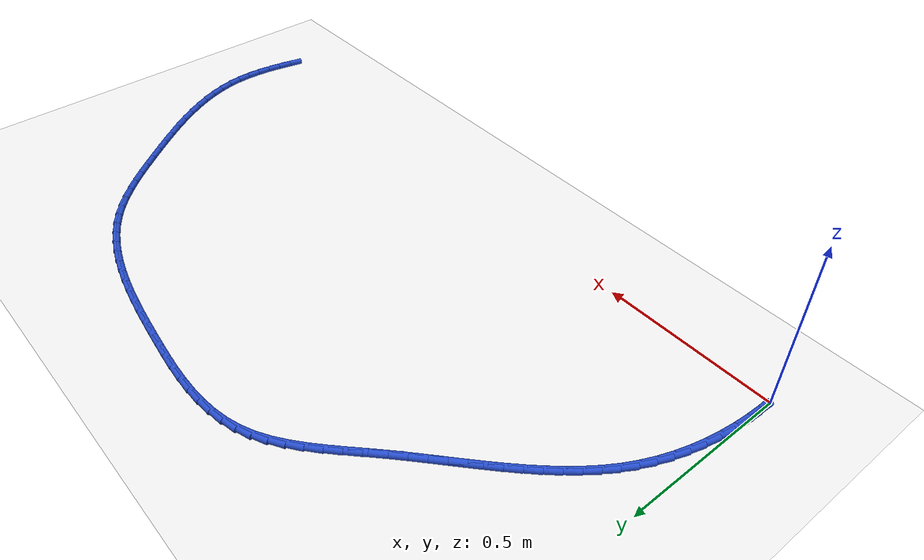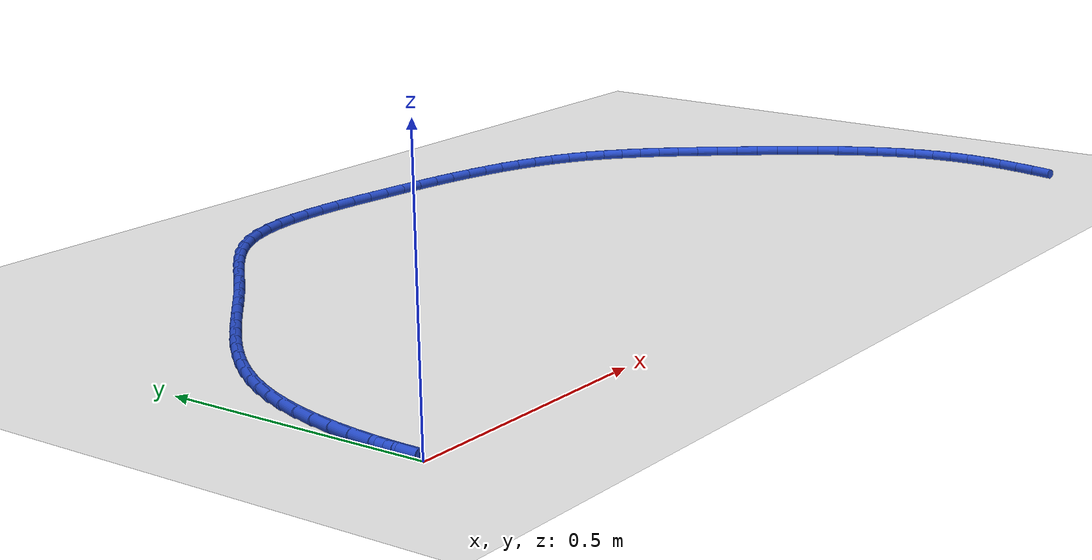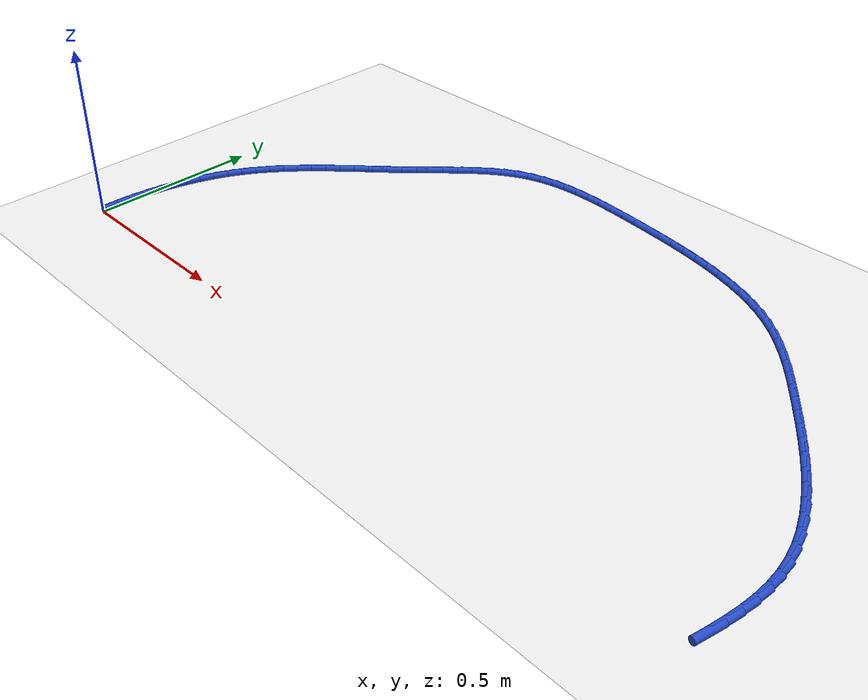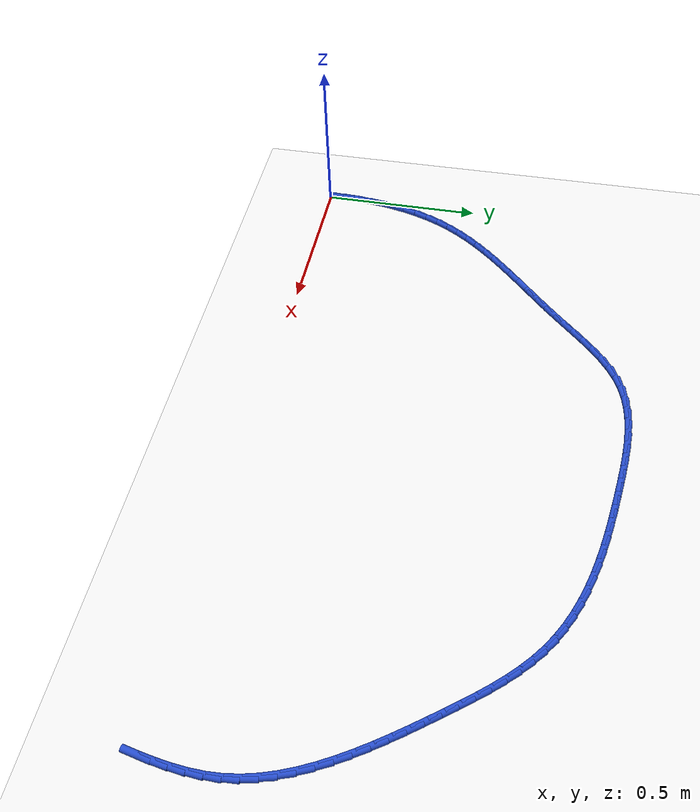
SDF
<sdf version="1.6">
 <world name="default">
  <model name="ground_plane">
   <static>1</static>
   <link name="link">
    <collision name="collision">
     <geometry><plane><normal>0 0 1</normal><size>100 100</size></plane></geometry>
     <surface><friction><ode><mu>100</mu><mu2>50</mu2></ode></friction></surface>
    </collision>
    <visual name="visual">
     <cast_shadows>0</cast_shadows>
     <geometry><plane><normal>0 0 1</normal><size>100 100</size></plane></geometry>
     <material>
      <script><uri>file://media/materials/scripts/gazebo.material</uri><name>Gazebo/WhiteGlow</name></script>
     </material>
    </visual>
   </link>
  </model>
  <model name="line">
   <link name="link_1">
    <pose>0.0004980837336147178 0.04536144256237778 0.01 0 1.57 1.5186307544797466</pose>
    <collision name="collision">
     <geometry><cylinder><radius>0.01</radius><length>0.08</length></cylinder></geometry>
    </collision>
    <visual name="visual">
     <material>
      <script><name>Gazebo/Blue</name><uri>file://media/materials/scripts/gazebo.material</uri></script>
     </material>
     <geometry><cylinder><radius>0.01</radius><length>0.08</length></cylinder></geometry>
    </visual>
   </link>
   <link name="link_2">
    <pose>0.0028660589533701453 0.09071370798471727 0.01 0 1.57 1.4754094035959286</pose>
    <collision name="collision">
     <geometry><cylinder><radius>0.01</radius><length>0.08</length></cylinder></geometry>
    </collision>
    <visual name="visual">
     <material>
      <script><name>Gazebo/Blue</name><uri>file://media/materials/scripts/gazebo.material</uri></script>
     </material>
     <geometry><cylinder><radius>0.01</radius><length>0.08</length></cylinder></geometry>
    </visual>
   </link>
   <link name="link_3">
    <pose>0.007185367812581252 0.13585827057391336 0.01 0 1.57 1.4297559981222152</pose>
    <collision name="collision">
     <geometry><cylinder><radius>0.01</radius><length>0.08</length></cylinder></geometry>
    </collision>
    <visual name="visual">
     <material>
      <script><name>Gazebo/Blue</name><uri>file://media/materials/scripts/gazebo.material</uri></script>
     </material>
     <geometry><cylinder><radius>0.01</radius><length>0.08</length></cylinder></geometry>
    </visual>
   </link>
   <link name="link_4">
    <pose>0.013537452464563046 0.18059660463686114 0.01 0 1.57 1.381265283397986</pose>
    <collision name="collision">
     <geometry><cylinder><radius>0.01</radius><length>0.08</length></cylinder></geometry>
    </collision>
    <visual name="visual">
     <material>
      <script><name>Gazebo/Blue</name><uri>file://media/materials/scripts/gazebo.material</uri></script>
     </material>
     <geometry><cylinder><radius>0.01</radius><length>0.08</length></cylinder></geometry>
    </visual>
   </link>
   <link name="link_5">
    <pose>0.02200375506263049 0.22473018448045545 0.01 0 1.57 1.32952694881339</pose>
    <collision name="collision">
     <geometry><cylinder><radius>0.01</radius><length>0.08</length></cylinder></geometry>
    </collision>
    <visual name="visual">
     <material>
      <script><name>Gazebo/Blue</name><uri>file://media/materials/scripts/gazebo.material</uri></script>
     </material>
     <geometry><cylinder><radius>0.01</radius><length>0.08</length></cylinder></geometry>
    </visual>
   </link>
   <link name="link_6">
    <pose>0.03266571776009861 0.2680604844115916 0.01 0 1.57 1.2741347418427678</pose>
    <collision name="collision">
     <geometry><cylinder><radius>0.01</radius><length>0.08</length></cylinder></geometry>
    </collision>
    <visual name="visual">
     <material>
      <script><name>Gazebo/Blue</name><uri>file://media/materials/scripts/gazebo.material</uri></script>
     </material>
     <geometry><cylinder><radius>0.01</radius><length>0.08</length></cylinder></geometry>
    </visual>
   </link>
   <link name="link_7">
    <pose>0.045604782710282385 0.31038897873716437 0.01 0 1.57 1.2147025391484945</pose>
    <collision name="collision">
     <geometry><cylinder><radius>0.01</radius><length>0.08</length></cylinder></geometry>
    </collision>
    <visual name="visual">
     <material>
      <script><name>Gazebo/Blue</name><uri>file://media/materials/scripts/gazebo.material</uri></script>
     </material>
     <geometry><cylinder><radius>0.01</radius><length>0.08</length></cylinder></geometry>
    </visual>
   </link>
   <link name="link_8">
    <pose>0.060902392066496794 0.35151714176406873 0.01 0 1.57 1.1508891159409884</pose>
    <collision name="collision">
     <geometry><cylinder><radius>0.01</radius><length>0.08</length></cylinder></geometry>
    </collision>
    <visual name="visual">
     <material>
      <script><name>Gazebo/Blue</name><uri>file://media/materials/scripts/gazebo.material</uri></script>
     </material>
     <geometry><cylinder><radius>0.01</radius><length>0.08</length></cylinder></geometry>
    </visual>
   </link>
   <link name="link_9">
    <pose>0.07863998798205683 0.3912464477991998 0.01 0 1.57 1.08282353586346</pose>
    <collision name="collision">
     <geometry><cylinder><radius>0.01</radius><length>0.08</length></cylinder></geometry>
    </collision>
    <visual name="visual">
     <material>
      <script><name>Gazebo/Blue</name><uri>file://media/materials/scripts/gazebo.material</uri></script>
     </material>
     <geometry><cylinder><radius>0.01</radius><length>0.08</length></cylinder></geometry>
    </visual>
   </link>
   <link name="link_10">
    <pose>0.09888734159345738 0.4293923587249024 0.01 0 1.57 1.0164514166122463</pose>
    <collision name="collision">
     <geometry><cylinder><radius>0.01</radius><length>0.08</length></cylinder></geometry>
    </collision>
    <visual name="visual">
     <material>
      <script><name>Gazebo/Blue</name><uri>file://media/materials/scripts/gazebo.material</uri></script>
     </material>
     <geometry><cylinder><radius>0.01</radius><length>0.08</length></cylinder></geometry>
    </visual>
   </link>
   <link name="link_11">
    <pose>0.12153896443427915 0.4659803829821774 0.01 0 1.57 0.9569753983589105</pose>
    <collision name="collision">
     <geometry><cylinder><radius>0.01</radius><length>0.08</length></cylinder></geometry>
    </collision>
    <visual name="visual">
     <material>
      <script><name>Gazebo/Blue</name><uri>file://media/materials/scripts/gazebo.material</uri></script>
     </material>
     <geometry><cylinder><radius>0.01</radius><length>0.08</length></cylinder></geometry>
    </visual>
   </link>
   <link name="link_12">
    <pose>0.1463541316501552 0.5011981082215012 0.01 0 1.57 0.9050196701007648</pose>
    <collision name="collision">
     <geometry><cylinder><radius>0.01</radius><length>0.08</length></cylinder></geometry>
    </collision>
    <visual name="visual">
     <material>
      <script><name>Gazebo/Blue</name><uri>file://media/materials/scripts/gazebo.material</uri></script>
     </material>
     <geometry><cylinder><radius>0.01</radius><length>0.08</length></cylinder></geometry>
    </visual>
   </link>
   <link name="link_13">
    <pose>0.17308862103365819 0.535237313629578 0.01 0 1.57 0.8607954842290533</pose>
    <collision name="collision">
     <geometry><cylinder><radius>0.01</radius><length>0.08</length></cylinder></geometry>
    </collision>
    <visual name="visual">
     <material>
      <script><name>Gazebo/Blue</name><uri>file://media/materials/scripts/gazebo.material</uri></script>
     </material>
     <geometry><cylinder><radius>0.01</radius><length>0.08</length></cylinder></geometry>
    </visual>
   </link>
   <link name="link_14">
    <pose>0.2014982103773606 0.5682897783931119 0.01 0 1.57 0.8243014754025475</pose>
    <collision name="collision">
     <geometry><cylinder><radius>0.01</radius><length>0.08</length></cylinder></geometry>
    </collision>
    <visual name="visual">
     <material>
      <script><name>Gazebo/Blue</name><uri>file://media/materials/scripts/gazebo.material</uri></script>
     </material>
     <geometry><cylinder><radius>0.01</radius><length>0.08</length></cylinder></geometry>
    </visual>
   </link>
   <link name="link_15">
    <pose>0.23133867747383494 0.6005472816988067 0.01 0 1.57 0.795403954983912</pose>
    <collision name="collision">
     <geometry><cylinder><radius>0.01</radius><length>0.08</length></cylinder></geometry>
    </collision>
    <visual name="visual">
     <material>
      <script><name>Gazebo/Blue</name><uri>file://media/materials/scripts/gazebo.material</uri></script>
     </material>
     <geometry><cylinder><radius>0.01</radius><length>0.08</length></cylinder></geometry>
    </visual>
   </link>
   <link name="link_16">
    <pose>0.2623658001156538 0.6322016027333663 0.01 0 1.57 0.773903501327503</pose>
    <collision name="collision">
     <geometry><cylinder><radius>0.01</radius><length>0.08</length></cylinder></geometry>
    </collision>
    <visual name="visual">
     <material>
      <script><name>Gazebo/Blue</name><uri>file://media/materials/scripts/gazebo.material</uri></script>
     </material>
     <geometry><cylinder><radius>0.01</radius><length>0.08</length></cylinder></geometry>
    </visual>
   </link>
   <link name="link_17">
    <pose>0.29433535609538963 0.6634445206834949 0.01 0 1.57 0.7595843718589559</pose>
    <collision name="collision">
     <geometry><cylinder><radius>0.01</radius><length>0.08</length></cylinder></geometry>
    </collision>
    <visual name="visual">
     <material>
      <script><name>Gazebo/Blue</name><uri>file://media/materials/scripts/gazebo.material</uri></script>
     </material>
     <geometry><cylinder><radius>0.01</radius><length>0.08</length></cylinder></geometry>
    </visual>
   </link>
   <link name="link_18">
    <pose>0.32700312320561503 0.6944678147358964 0.01 0 1.57 0.7522475026773017</pose>
    <collision name="collision">
     <geometry><cylinder><radius>0.01</radius><length>0.08</length></cylinder></geometry>
    </collision>
    <visual name="visual">
     <material>
      <script><name>Gazebo/Blue</name><uri>file://media/materials/scripts/gazebo.material</uri></script>
     </material>
     <geometry><cylinder><radius>0.01</radius><length>0.08</length></cylinder></geometry>
    </visual>
   </link>
   <link name="link_19">
    <pose>0.36012487923890246 0.7254632640772747 0.01 0 1.57 0.7517295700213301</pose>
    <collision name="collision">
     <geometry><cylinder><radius>0.01</radius><length>0.08</length></cylinder></geometry>
    </collision>
    <visual name="visual">
     <material>
      <script><name>Gazebo/Blue</name><uri>file://media/materials/scripts/gazebo.material</uri></script>
     </material>
     <geometry><cylinder><radius>0.01</radius><length>0.08</length></cylinder></geometry>
    </visual>
   </link>
   <link name="link_20">
    <pose>0.39345640198782456 0.7566226478943339 0.01 0 1.57 0.7579107161345098</pose>
    <collision name="collision">
     <geometry><cylinder><radius>0.01</radius><length>0.08</length></cylinder></geometry>
    </collision>
    <visual name="visual">
     <material>
      <script><name>Gazebo/Blue</name><uri>file://media/materials/scripts/gazebo.material</uri></script>
     </material>
     <geometry><cylinder><radius>0.01</radius><length>0.08</length></cylinder></geometry>
    </visual>
   </link>
   <link name="link_21">
    <pose>0.4267534692449537 0.7881377453737778 0.01 0 1.57 0.7707129124697559</pose>
    <collision name="collision">
     <geometry><cylinder><radius>0.01</radius><length>0.08</length></cylinder></geometry>
    </collision>
    <visual name="visual">
     <material>
      <script><name>Gazebo/Blue</name><uri>file://media/materials/scripts/gazebo.material</uri></script>
     </material>
     <geometry><cylinder><radius>0.01</radius><length>0.08</length></cylinder></geometry>
    </visual>
   </link>
   <link name="link_22">
    <pose>0.45977185880286264 0.8202003357023107 0.01 0 1.57 0.7874714968516009</pose>
    <collision name="collision">
     <geometry><cylinder><radius>0.01</radius><length>0.08</length></cylinder></geometry>
    </collision>
    <visual name="visual">
     <material>
      <script><name>Gazebo/Blue</name><uri>file://media/materials/scripts/gazebo.material</uri></script>
     </material>
     <geometry><cylinder><radius>0.01</radius><length>0.08</length></cylinder></geometry>
    </visual>
   </link>
   <link name="link_23">
    <pose>0.4923334600405235 0.8528972397760777 0.01 0 1.57 0.7929929778401426</pose>
    <collision name="collision">
     <geometry><cylinder><radius>0.01</radius><length>0.08</length></cylinder></geometry>
    </collision>
    <visual name="visual">
     <material>
      <script><name>Gazebo/Blue</name><uri>file://media/materials/scripts/gazebo.material</uri></script>
     </material>
     <geometry><cylinder><radius>0.01</radius><length>0.08</length></cylinder></geometry>
    </visual>
   </link>
   <link name="link_24">
    <pose>0.5246453715996344 0.8857037229693384 0.01 0 1.57 0.7817123978896611</pose>
    <collision name="collision">
     <geometry><cylinder><radius>0.01</radius><length>0.08</length></cylinder></geometry>
    </collision>
    <visual name="visual">
     <material>
      <script><name>Gazebo/Blue</name><uri>file://media/materials/scripts/gazebo.material</uri></script>
     </material>
     <geometry><cylinder><radius>0.01</radius><length>0.08</length></cylinder></geometry>
    </visual>
   </link>
   <link name="link_25">
    <pose>0.5570538294970856 0.9178741571360471 0.01 0 1.57 0.7529931709062846</pose>
    <collision name="collision">
     <geometry><cylinder><radius>0.01</radius><length>0.08</length></cylinder></geometry>
    </collision>
    <visual name="visual">
     <material>
      <script><name>Gazebo/Blue</name><uri>file://media/materials/scripts/gazebo.material</uri></script>
     </material>
     <geometry><cylinder><radius>0.01</radius><length>0.08</length></cylinder></geometry>
    </visual>
   </link>
   <link name="link_26">
    <pose>0.589905258699434 0.9486626141549902 0.01 0 1.57 0.7056293653462783</pose>
    <collision name="collision">
     <geometry><cylinder><radius>0.01</radius><length>0.08</length></cylinder></geometry>
    </collision>
    <visual name="visual">
     <material>
      <script><name>Gazebo/Blue</name><uri>file://media/materials/scripts/gazebo.material</uri></script>
     </material>
     <geometry><cylinder><radius>0.01</radius><length>0.08</length></cylinder></geometry>
    </visual>
   </link>
   <link name="link_27">
    <pose>0.6235460841732369 0.9773231659049542 0.01 0 1.57 0.6380358123388974</pose>
    <collision name="collision">
     <geometry><cylinder><radius>0.01</radius><length>0.08</length></cylinder></geometry>
    </collision>
    <visual name="visual">
     <material>
      <script><name>Gazebo/Blue</name><uri>file://media/materials/scripts/gazebo.material</uri></script>
     </material>
     <geometry><cylinder><radius>0.01</radius><length>0.08</length></cylinder></geometry>
    </visual>
   </link>
   <link name="link_28">
    <pose>0.6583227308850517 1.003109884264726 0.01 0 1.57 0.5487249761104109</pose>
    <collision name="collision">
     <geometry><cylinder><radius>0.01</radius><length>0.08</length></cylinder></geometry>
    </collision>
    <visual name="visual">
     <material>
      <script><name>Gazebo/Blue</name><uri>file://media/materials/scripts/gazebo.material</uri></script>
     </material>
     <geometry><cylinder><radius>0.01</radius><length>0.08</length></cylinder></geometry>
    </visual>
   </link>
   <link name="link_29">
    <pose>0.6945816238014362 1.0252768411130926 0.01 0 1.57 0.4376581873895233</pose>
    <collision name="collision">
     <geometry><cylinder><radius>0.01</radius><length>0.08</length></cylinder></geometry>
    </collision>
    <visual name="visual">
     <material>
      <script><name>Gazebo/Blue</name><uri>file://media/materials/scripts/gazebo.material</uri></script>
     </material>
     <geometry><cylinder><radius>0.01</radius><length>0.08</length></cylinder></geometry>
    </visual>
   </link>
   <link name="link_30">
    <pose>0.7326611927867951 1.043095140949543 0.01 0 1.57 0.32077157145601176</pose>
    <collision name="collision">
     <geometry><cylinder><radius>0.01</radius><length>0.08</length></cylinder></geometry>
    </collision>
    <visual name="visual">
     <material>
      <script><name>Gazebo/Blue</name><uri>file://media/materials/scripts/gazebo.material</uri></script>
     </material>
     <geometry><cylinder><radius>0.01</radius><length>0.08</length></cylinder></geometry>
    </visual>
   </link>
   <link name="link_31">
    <pose>0.7726446977582366 1.05637949770398 0.01 0 1.57 0.21752228846156565</pose>
    <collision name="collision">
     <geometry><cylinder><radius>0.01</radius><length>0.08</length></cylinder></geometry>
    </collision>
    <visual name="visual">
     <material>
      <script><name>Gazebo/Blue</name><uri>file://media/materials/scripts/gazebo.material</uri></script>
     </material>
     <geometry><cylinder><radius>0.01</radius><length>0.08</length></cylinder></geometry>
    </visual>
   </link>
   <link name="link_32">
    <pose>0.8143129385195773 1.0655889808491543 0.01 0 1.57 0.12986642397919734</pose>
    <collision name="collision">
     <geometry><cylinder><radius>0.01</radius><length>0.08</length></cylinder></geometry>
    </collision>
    <visual name="visual">
     <material>
      <script><name>Gazebo/Blue</name><uri>file://media/materials/scripts/gazebo.material</uri></script>
     </material>
     <geometry><cylinder><radius>0.01</radius><length>0.08</length></cylinder></geometry>
    </visual>
   </link>
   <link name="link_33">
    <pose>0.8574291759518371 1.0712200244610264 0.01 0 1.57 0.05744141435829287</pose>
    <collision name="collision">
     <geometry><cylinder><radius>0.01</radius><length>0.08</length></cylinder></geometry>
    </collision>
    <visual name="visual">
     <material>
      <script><name>Gazebo/Blue</name><uri>file://media/materials/scripts/gazebo.material</uri></script>
     </material>
     <geometry><cylinder><radius>0.01</radius><length>0.08</length></cylinder></geometry>
    </visual>
   </link>
   <link name="link_34">
    <pose>0.9017566709360358 1.0737690626155552 0.01 0 1.57 -0.00080643698102957</pose>
    <collision name="collision">
     <geometry><cylinder><radius>0.01</radius><length>0.08</length></cylinder></geometry>
    </collision>
    <visual name="visual">
     <material>
      <script><name>Gazebo/Blue</name><uri>file://media/materials/scripts/gazebo.material</uri></script>
     </material>
     <geometry><cylinder><radius>0.01</radius><length>0.08</length></cylinder></geometry>
    </visual>
   </link>
   <link name="link_35">
    <pose>0.947058684353193 1.0737325293887008 0.01 0 1.57 -0.04613752381808575</pose>
    <collision name="collision">
     <geometry><cylinder><radius>0.01</radius><length>0.08</length></cylinder></geometry>
    </collision>
    <visual name="visual">
     <material>
      <script><name>Gazebo/Blue</name><uri>file://media/materials/scripts/gazebo.material</uri></script>
     </material>
     <geometry><cylinder><radius>0.01</radius><length>0.08</length></cylinder></geometry>
    </visual>
   </link>
   <link name="link_36">
    <pose>0.993098477084329 1.0716068588564225 0.01 0 1.57 -0.07972552265454705</pose>
    <collision name="collision">
     <geometry><cylinder><radius>0.01</radius><length>0.08</length></cylinder></geometry>
    </collision>
    <visual name="visual">
     <material>
      <script><name>Gazebo/Blue</name><uri>file://media/materials/scripts/gazebo.material</uri></script>
     </material>
     <geometry><cylinder><radius>0.01</radius><length>0.08</length></cylinder></geometry>
    </visual>
   </link>
   <link name="link_37">
    <pose>1.0396393100104626 1.06788848509468 0.01 0 1.57 -0.10250516770148083</pose>
    <collision name="collision">
     <geometry><cylinder><radius>0.01</radius><length>0.08</length></cylinder></geometry>
    </collision>
    <visual name="visual">
     <material>
      <script><name>Gazebo/Blue</name><uri>file://media/materials/scripts/gazebo.material</uri></script>
     </material>
     <geometry><cylinder><radius>0.01</radius><length>0.08</length></cylinder></geometry>
    </visual>
   </link>
   <link name="link_38">
    <pose>1.0864444440126149 1.063073842179433 0.01 0 1.57 -0.11516826157743802</pose>
    <collision name="collision">
     <geometry><cylinder><radius>0.01</radius><length>0.08</length></cylinder></geometry>
    </collision>
    <visual name="visual">
     <material>
      <script><name>Gazebo/Blue</name><uri>file://media/materials/scripts/gazebo.material</uri></script>
     </material>
     <geometry><cylinder><radius>0.01</radius><length>0.08</length></cylinder></geometry>
    </visual>
   </link>
   <link name="link_39">
    <pose>1.1332775977782665 1.0576561752479672 0.01 0 1.57 -0.12310397523829378</pose>
    <collision name="collision">
     <geometry><cylinder><radius>0.01</radius><length>0.08</length></cylinder></geometry>
    </collision>
    <visual name="visual">
     <material>
      <script><name>Gazebo/Blue</name><uri>file://media/materials/scripts/gazebo.material</uri></script>
     </material>
     <geometry><cylinder><radius>0.01</radius><length>0.08</length></cylinder></geometry>
    </visual>
   </link>
   <link name="link_40">
    <pose>1.1799377773759128 1.0518829284202045 0.01 0 1.57 -0.1350533147623352</pose>
    <collision name="collision">
     <geometry><cylinder><radius>0.01</radius><length>0.08</length></cylinder></geometry>
    </collision>
    <visual name="visual">
     <material>
      <script><name>Gazebo/Blue</name><uri>file://media/materials/scripts/gazebo.material</uri></script>
     </material>
     <geometry><cylinder><radius>0.01</radius><length>0.08</length></cylinder></geometry>
    </visual>
   </link>
   <link name="link_41">
    <pose>1.2262837282260395 1.0455854199071946 0.01 0 1.57 -0.15200506149876847</pose>
    <collision name="collision">
     <geometry><cylinder><radius>0.01</radius><length>0.08</length></cylinder></geometry>
    </collision>
    <visual name="visual">
     <material>
      <script><name>Gazebo/Blue</name><uri>file://media/materials/scripts/gazebo.material</uri></script>
     </material>
     <geometry><cylinder><radius>0.01</radius><length>0.08</length></cylinder></geometry>
    </visual>
   </link>
   <link name="link_42">
    <pose>1.2721799729846093 1.0385547254787244 0.01 0 1.57 -0.17417420988629273</pose>
    <collision name="collision">
     <geometry><cylinder><radius>0.01</radius><length>0.08</length></cylinder></geometry>
    </collision>
    <visual name="visual">
     <material>
      <script><name>Gazebo/Blue</name><uri>file://media/materials/scripts/gazebo.material</uri></script>
     </material>
     <geometry><cylinder><radius>0.01</radius><length>0.08</length></cylinder></geometry>
    </visual>
   </link>
   <link name="link_43">
    <pose>1.3174910343075843 1.03058192090458 0.01 0 1.57 -0.201828539432627</pose>
    <collision name="collision">
     <geometry><cylinder><radius>0.01</radius><length>0.08</length></cylinder></geometry>
    </collision>
    <visual name="visual">
     <material>
      <script><name>Gazebo/Blue</name><uri>file://media/materials/scripts/gazebo.material</uri></script>
     </material>
     <geometry><cylinder><radius>0.01</radius><length>0.08</length></cylinder></geometry>
    </visual>
   </link>
   <link name="link_44">
    <pose>1.362081434850928 1.0214580819545478 0.01 0 1.57 -0.23527632506989113</pose>
    <collision name="collision">
     <geometry><cylinder><radius>0.01</radius><length>0.08</length></cylinder></geometry>
    </collision>
    <visual name="visual">
     <material>
      <script><name>Gazebo/Blue</name><uri>file://media/materials/scripts/gazebo.material</uri></script>
     </material>
     <geometry><cylinder><radius>0.01</radius><length>0.08</length></cylinder></geometry>
    </visual>
   </link>
   <link name="link_45">
    <pose>1.4058156972706037 1.0109742843984144 0.01 0 1.57 -0.27484616910155496</pose>
    <collision name="collision">
     <geometry><cylinder><radius>0.01</radius><length>0.08</length></cylinder></geometry>
    </collision>
    <visual name="visual">
     <material>
      <script><name>Gazebo/Blue</name><uri>file://media/materials/scripts/gazebo.material</uri></script>
     </material>
     <geometry><cylinder><radius>0.01</radius><length>0.08</length></cylinder></geometry>
    </visual>
   </link>
   <link name="link_46">
    <pose>1.4485583442225725 0.9989216040059661 0.01 0 1.57 -0.32085572976055443</pose>
    <collision name="collision">
     <geometry><cylinder><radius>0.01</radius><length>0.08</length></cylinder></geometry>
    </collision>
    <visual name="visual">
     <material>
      <script><name>Gazebo/Blue</name><uri>file://media/materials/scripts/gazebo.material</uri></script>
     </material>
     <geometry><cylinder><radius>0.01</radius><length>0.08</length></cylinder></geometry>
    </visual>
   </link>
   <link name="link_47">
    <pose>1.4901738983627983 0.9850911165469892 0.01 0 1.57 -0.3735661344318423</pose>
    <collision name="collision">
     <geometry><cylinder><radius>0.01</radius><length>0.08</length></cylinder></geometry>
    </collision>
    <visual name="visual">
     <material>
      <script><name>Gazebo/Blue</name><uri>file://media/materials/scripts/gazebo.material</uri></script>
     </material>
     <geometry><cylinder><radius>0.01</radius><length>0.08</length></cylinder></geometry>
    </visual>
   </link>
   <link name="link_48">
    <pose>1.530526882347243 0.9692738977912702 0.01 0 1.57 -0.43312014791408227</pose>
    <collision name="collision">
     <geometry><cylinder><radius>0.01</radius><length>0.08</length></cylinder></geometry>
    </collision>
    <visual name="visual">
     <material>
      <script><name>Gazebo/Blue</name><uri>file://media/materials/scripts/gazebo.material</uri></script>
     </material>
     <geometry><cylinder><radius>0.01</radius><length>0.08</length></cylinder></geometry>
    </visual>
   </link>
   <link name="link_49">
    <pose>1.5694818188318709 0.9512610235085959 0.01 0 1.57 -0.49946565035677365</pose>
    <collision name="collision">
     <geometry><cylinder><radius>0.01</radius><length>0.08</length></cylinder></geometry>
    </collision>
    <visual name="visual">
     <material>
      <script><name>Gazebo/Blue</name><uri>file://media/materials/scripts/gazebo.material</uri></script>
     </material>
     <geometry><cylinder><radius>0.01</radius><length>0.08</length></cylinder></geometry>
    </visual>
   </link>
   <link name="link_50">
    <pose>1.6069032304726434 0.9308435694687521 0.01 0 1.57 -0.5722723704274157</pose>
    <collision name="collision">
     <geometry><cylinder><radius>0.01</radius><length>0.08</length></cylinder></geometry>
    </collision>
    <visual name="visual">
     <material>
      <script><name>Gazebo/Blue</name><uri>file://media/materials/scripts/gazebo.material</uri></script>
     </material>
     <geometry><cylinder><radius>0.01</radius><length>0.08</length></cylinder></geometry>
    </visual>
   </link>
   <link name="link_51">
    <pose>1.6426556399255228 0.9078126114415256 0.01 0 1.57 -0.6495528864928601</pose>
    <collision name="collision">
     <geometry><cylinder><radius>0.01</radius><length>0.08</length></cylinder></geometry>
    </collision>
    <visual name="visual">
     <material>
      <script><name>Gazebo/Blue</name><uri>file://media/materials/scripts/gazebo.material</uri></script>
     </material>
     <geometry><cylinder><radius>0.01</radius><length>0.08</length></cylinder></geometry>
    </visual>
   </link>
   <link name="link_52">
    <pose>1.6766363597591805 0.8820042841685876 0.01 0 1.57 -0.720430150250718</pose>
    <collision name="collision">
     <geometry><cylinder><radius>0.01</radius><length>0.08</length></cylinder></geometry>
    </collision>
    <visual name="visual">
     <material>
      <script><name>Gazebo/Blue</name><uri>file://media/materials/scripts/gazebo.material</uri></script>
     </material>
     <geometry><cylinder><radius>0.01</radius><length>0.08</length></cylinder></geometry>
    </visual>
   </link>
   <link name="link_53">
    <pose>1.7089938905427677 0.8535998978470134 0.01 0 1.57 -0.7798929273951475</pose>
    <collision name="collision">
     <geometry><cylinder><radius>0.01</radius><length>0.08</length></cylinder></geometry>
    </collision>
    <visual name="visual">
     <material>
      <script><name>Gazebo/Blue</name><uri>file://media/materials/scripts/gazebo.material</uri></script>
     </material>
     <geometry><cylinder><radius>0.01</radius><length>0.08</length></cylinder></geometry>
    </visual>
   </link>
   <link name="link_54">
    <pose>1.7399928748245117 0.8229403617010722 0.01 0 1.57 -0.8280621258734835</pose>
    <collision name="collision">
     <geometry><cylinder><radius>0.01</radius><length>0.08</length></cylinder></geometry>
    </collision>
    <visual name="visual">
     <material>
      <script><name>Gazebo/Blue</name><uri>file://media/materials/scripts/gazebo.material</uri></script>
     </material>
     <geometry><cylinder><radius>0.01</radius><length>0.08</length></cylinder></geometry>
    </visual>
   </link>
   <link name="link_55">
    <pose>1.7698985837290366 0.7903674487269619 0.01 0 1.57 -0.8653701384699545</pose>
    <collision name="collision">
     <geometry><cylinder><radius>0.01</radius><length>0.08</length></cylinder></geometry>
    </collision>
    <visual name="visual">
     <material>
      <script><name>Gazebo/Blue</name><uri>file://media/materials/scripts/gazebo.material</uri></script>
     </material>
     <geometry><cylinder><radius>0.01</radius><length>0.08</length></cylinder></geometry>
    </visual>
   </link>
   <link name="link_56">
    <pose>1.7989762883809655 0.7562229319208784 0.01 0 1.57 -0.8923518953793831</pose>
    <collision name="collision">
     <geometry><cylinder><radius>0.01</radius><length>0.08</length></cylinder></geometry>
    </collision>
    <visual name="visual">
     <material>
      <script><name>Gazebo/Blue</name><uri>file://media/materials/scripts/gazebo.material</uri></script>
     </material>
     <geometry><cylinder><radius>0.01</radius><length>0.08</length></cylinder></geometry>
    </visual>
   </link>
   <link name="link_57">
    <pose>1.827491259904921 0.7208485842790184 0.01 0 1.57 -0.9095226732119822</pose>
    <collision name="collision">
     <geometry><cylinder><radius>0.01</radius><length>0.08</length></cylinder></geometry>
    </collision>
    <visual name="visual">
     <material>
      <script><name>Gazebo/Blue</name><uri>file://media/materials/scripts/gazebo.material</uri></script>
     </material>
     <geometry><cylinder><radius>0.01</radius><length>0.08</length></cylinder></geometry>
    </visual>
   </link>
   <link name="link_58">
    <pose>1.8557087694255268 0.6845861787975789 0.01 0 1.57 -0.9181744254247517</pose>
    <collision name="collision">
     <geometry><cylinder><radius>0.01</radius><length>0.08</length></cylinder></geometry>
    </collision>
    <visual name="visual">
     <material>
      <script><name>Gazebo/Blue</name><uri>file://media/materials/scripts/gazebo.material</uri></script>
     </material>
     <geometry><cylinder><radius>0.01</radius><length>0.08</length></cylinder></geometry>
    </visual>
   </link>
   <link name="link_59">
    <pose>1.883858282717536 0.6477581278378524 0.01 0 1.57 -0.9274964941543484</pose>
    <collision name="collision">
     <geometry><cylinder><radius>0.01</radius><length>0.08</length></cylinder></geometry>
    </collision>
    <visual name="visual">
     <material>
      <script><name>Gazebo/Blue</name><uri>file://media/materials/scripts/gazebo.material</uri></script>
     </material>
     <geometry><cylinder><radius>0.01</radius><length>0.08</length></cylinder></geometry>
    </visual>
   </link>
   <link name="link_60">
    <pose>1.9117998418528495 0.6104870893260458 0.01 0 1.57 -0.9428511068359814</pose>
    <collision name="collision">
     <geometry><cylinder><radius>0.01</radius><length>0.08</length></cylinder></geometry>
    </collision>
    <visual name="visual">
     <material>
      <script><name>Gazebo/Blue</name><uri>file://media/materials/scripts/gazebo.material</uri></script>
     </material>
     <geometry><cylinder><radius>0.01</radius><length>0.08</length></cylinder></geometry>
    </visual>
   </link>
   <link name="link_61">
    <pose>1.939175647420964 0.57277793014811 0.01 0 1.57 -0.9645058954028687</pose>
    <collision name="collision">
     <geometry><cylinder><radius>0.01</radius><length>0.08</length></cylinder></geometry>
    </collision>
    <visual name="visual">
     <material>
      <script><name>Gazebo/Blue</name><uri>file://media/materials/scripts/gazebo.material</uri></script>
     </material>
     <geometry><cylinder><radius>0.01</radius><length>0.08</length></cylinder></geometry>
    </visual>
   </link>
   <link name="link_62">
    <pose>1.965625088266231 0.5346339968258186 0.01 0 1.57 -0.9928103520685695</pose>
    <collision name="collision">
     <geometry><cylinder><radius>0.01</radius><length>0.08</length></cylinder></geometry>
    </collision>
    <visual name="visual">
     <material>
      <script><name>Gazebo/Blue</name><uri>file://media/materials/scripts/gazebo.material</uri></script>
     </material>
     <geometry><cylinder><radius>0.01</radius><length>0.08</length></cylinder></geometry>
    </visual>
   </link>
   <link name="link_63">
    <pose>1.9907875532329986 0.49605863588094584 0.01 0 1.57 -1.0282527914248472</pose>
    <collision name="collision">
     <geometry><cylinder><radius>0.01</radius><length>0.08</length></cylinder></geometry>
    </collision>
    <visual name="visual">
     <material>
      <script><name>Gazebo/Blue</name><uri>file://media/materials/scripts/gazebo.material</uri></script>
     </material>
     <geometry><cylinder><radius>0.01</radius><length>0.08</length></cylinder></geometry>
    </visual>
   </link>
   <link name="link_64">
    <pose>2.0143024311656172 0.45705519383526577 0.01 0 1.57 -1.0714417554078424</pose>
    <collision name="collision">
     <geometry><cylinder><radius>0.01</radius><length>0.08</length></cylinder></geometry>
    </collision>
    <visual name="visual">
     <material>
      <script><name>Gazebo/Blue</name><uri>file://media/materials/scripts/gazebo.material</uri></script>
     </material>
     <geometry><cylinder><radius>0.01</radius><length>0.08</length></cylinder></geometry>
    </visual>
   </link>
   <link name="link_65">
    <pose>2.0358091109084375 0.4176270172105518 0.01 0 1.57 -1.1230708005565622</pose>
    <collision name="collision">
     <geometry><cylinder><radius>0.01</radius><length>0.08</length></cylinder></geometry>
    </collision>
    <visual name="visual">
     <material>
      <script><name>Gazebo/Blue</name><uri>file://media/materials/scripts/gazebo.material</uri></script>
     </material>
     <geometry><cylinder><radius>0.01</radius><length>0.08</length></cylinder></geometry>
    </visual>
   </link>
   <link name="link_66">
    <pose>2.054946981305808 0.377777452528578 0.01 0 1.57 -1.1838539705953655</pose>
    <collision name="collision">
     <geometry><cylinder><radius>0.01</radius><length>0.08</length></cylinder></geometry>
    </collision>
    <visual name="visual">
     <material>
      <script><name>Gazebo/Blue</name><uri>file://media/materials/scripts/gazebo.material</uri></script>
     </material>
     <geometry><cylinder><radius>0.01</radius><length>0.08</length></cylinder></geometry>
    </visual>
   </link>
   <link name="link_67">
    <pose>2.0713554312020785 0.33750984631111774 0.01 0 1.57 -1.2544167160873012</pose>
    <collision name="collision">
     <geometry><cylinder><radius>0.01</radius><length>0.08</length></cylinder></geometry>
    </collision>
    <visual name="visual">
     <material>
      <script><name>Gazebo/Blue</name><uri>file://media/materials/scripts/gazebo.material</uri></script>
     </material>
     <geometry><cylinder><radius>0.01</radius><length>0.08</length></cylinder></geometry>
    </visual>
   </link>
   <link name="link_68">
    <pose>2.084673849441599 0.29682754507994574 0.01 0 1.57 -1.3351294118829893</pose>
    <collision name="collision">
     <geometry><cylinder><radius>0.01</radius><length>0.08</length></cylinder></geometry>
    </collision>
    <visual name="visual">
     <material>
      <script><name>Gazebo/Blue</name><uri>file://media/materials/scripts/gazebo.material</uri></script>
     </material>
     <geometry><cylinder><radius>0.01</radius><length>0.08</length></cylinder></geometry>
    </visual>
   </link>
   <link name="link_69">
    <pose>2.094541624868719 0.2557338953568355 0.01 0 1.57 -1.4258677842091263</pose>
    <collision name="collision">
     <geometry><cylinder><radius>0.01</radius><length>0.08</length></cylinder></geometry>
    </collision>
    <visual name="visual">
     <material>
      <script><name>Gazebo/Blue</name><uri>file://media/materials/scripts/gazebo.material</uri></script>
     </material>
     <geometry><cylinder><radius>0.01</radius><length>0.08</length></cylinder></geometry>
    </visual>
   </link>
   <link name="link_70">
    <pose>2.100598867589892 0.21423224382602155 0.01 0 1.57 -1.520227763401603</pose>
    <collision name="collision">
     <geometry><cylinder><radius>0.01</radius><length>0.08</length></cylinder></geometry>
    </collision>
    <visual name="visual">
     <material>
      <script><name>Gazebo/Blue</name><uri>file://media/materials/scripts/gazebo.material</uri></script>
     </material>
     <geometry><cylinder><radius>0.01</radius><length>0.08</length></cylinder></geometry>
    </visual>
   </link>
   <link name="link_71">
    <pose>2.102719814837027 0.17232598990775552 0.01 0 1.57 1.538384300820513</pose>
    <collision name="collision">
     <geometry><cylinder><radius>0.01</radius><length>0.08</length></cylinder></geometry>
    </collision>
    <visual name="visual">
     <material>
      <script><name>Gazebo/Blue</name><uri>file://media/materials/scripts/gazebo.material</uri></script>
     </material>
     <geometry><cylinder><radius>0.01</radius><length>0.08</length></cylinder></geometry>
    </visual>
   </link>
   <link name="link_72">
    <pose>2.10134806821066 0.13001866126889527 0.01 0 1.57 1.4696101979807423</pose>
    <collision name="collision">
     <geometry><cylinder><radius>0.01</radius><length>0.08</length></cylinder></geometry>
    </collision>
    <visual name="visual">
     <material>
      <script><name>Gazebo/Blue</name><uri>file://media/materials/scripts/gazebo.material</uri></script>
     </material>
     <geometry><cylinder><radius>0.01</radius><length>0.08</length></cylinder></geometry>
    </visual>
   </link>
   <link name="link_73">
    <pose>2.0970121209248385 0.0873138046977283 0.01 0 1.57 1.4149512163984623</pose>
    <collision name="collision">
     <geometry><cylinder><radius>0.01</radius><length>0.08</length></cylinder></geometry>
    </collision>
    <visual name="visual">
     <material>
      <script><name>Gazebo/Blue</name><uri>file://media/materials/scripts/gazebo.material</uri></script>
     </material>
     <geometry><cylinder><radius>0.01</radius><length>0.08</length></cylinder></geometry>
    </visual>
   </link>
   <link name="link_74">
    <pose>2.0902404661936127 0.044214966982542445 0.01 0 1.57 1.3738205664194691</pose>
    <collision name="collision">
     <geometry><cylinder><radius>0.01</radius><length>0.08</length></cylinder></geometry>
    </collision>
    <visual name="visual">
     <material>
      <script><name>Gazebo/Blue</name><uri>file://media/materials/scripts/gazebo.material</uri></script>
     </material>
     <geometry><cylinder><radius>0.01</radius><length>0.08</length></cylinder></geometry>
    </visual>
   </link>
   <link name="link_75">
    <pose>2.08156159723103 0.0007256949116254789 0.01 0 1.57 1.3454624520640779</pose>
    <collision name="collision">
     <geometry><cylinder><radius>0.01</radius><length>0.08</length></cylinder></geometry>
    </collision>
    <visual name="visual">
     <material>
      <script><name>Gazebo/Blue</name><uri>file://media/materials/scripts/gazebo.material</uri></script>
     </material>
     <geometry><cylinder><radius>0.01</radius><length>0.08</length></cylinder></geometry>
    </visual>
   </link>
   <link name="link_151">
    <pose>0.0004802083240473178 0.04538158408890113 0.01 0 1.57 1.5602151535726958</pose>
    <collision name="collision">
     <geometry><cylinder><radius>0.01</radius><length>0.08</length></cylinder></geometry>
    </collision>
    <visual name="visual">
     <material>
      <script><name>Gazebo/Blue</name><uri>file://media/materials/scripts/gazebo.material</uri></script>
     </material>
     <geometry><cylinder><radius>0.01</radius><length>0.08</length></cylinder></geometry>
    </visual>
   </link>
  </model>
 </world>
</sdf>
